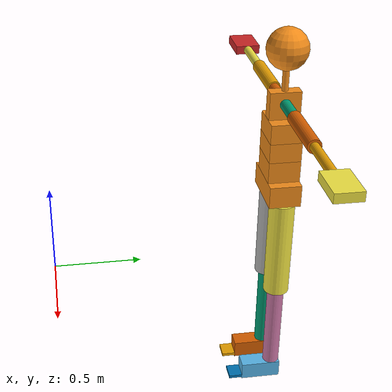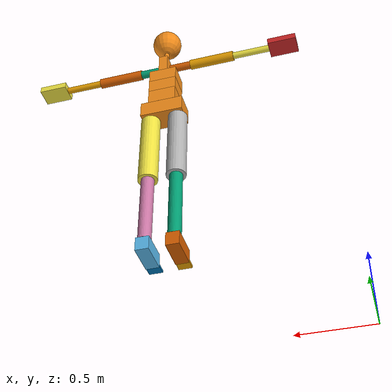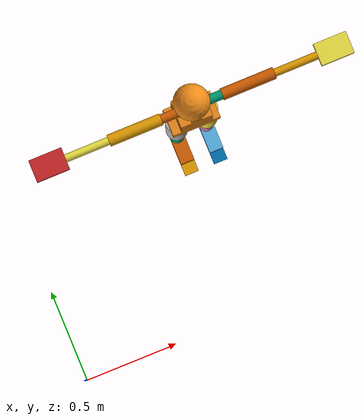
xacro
<!--URDF MODEL 66 DoFs-->

<robot name="human" xmlns:xacro="http://www.ros.org/wiki/xacro">

  <!-- Import all Gazebo-customization elements, including Gazebo colors -->
  <xacro:include filename="$(find wearable_robot_description)/urdf/human_66dof.gazebo"/>
  <!-- Import Rviz colors -->
  <xacro:include filename="$(find wearable_robot_description)/urdf/materials.xacro"/>

  <!--To open this model with Gazebo replace the null masses, inertias and dimensions of the 'fake links f1 and f2'-->
  <!--LINKS-->
  <!--Link base (1)-->
  <link name="Pelvis">
    <inertial>
      <mass value="4.976"/>
      <!--COM origin wrt pHipOrigin-->
      <origin xyz="0           0    0.049743" rpy="0 0 0" />
      <inertia ixx="0.029678" iyy="0.011854" izz="0.033653" ixy="0" ixz="0" iyz="0"/>
    </inertial>

    <visual>
      <!--box origin wrt pHipOrigin-->
      <origin xyz="0           0    0.049743" rpy="0 0 0" />
      <geometry>
        <box size="0.13815     0.24914    0.097469"/>
      </geometry>
      <material name="color"/>
    </visual>

    <collision>
      <!--box origin wrt pHipOrigin-->
      <origin xyz="0           0    0.049743" rpy="0 0 0" />
      <geometry>
        <box size="0.13815     0.24914    0.097469"/>
      </geometry>
    </collision>

  </link>
  <!--Chain from (2) to (7)-->
  <link name="L5_f1">
    <inertial>
      <mass value="0.1"/>
      <origin xyz="0 0 0" rpy="0 0 0" />
      <inertia ixx="1e-2" iyy="1e-2" izz="1e-2" ixy="0" ixz="0" iyz="0"/>
    </inertial>
  </link>
  <link name="L5_f2">
    <inertial>
      <mass value="0.1"/>
      <origin xyz="0 0 0" rpy="0 0 0" />
      <inertia ixx="1e-2" iyy="1e-2" izz="1e-2" ixy="0" ixz="0" iyz="0"/>
    </inertial>
  </link>
  <link name="L5">
    <inertial>
      <mass value="6.3444"/>
      <!--COM origin wrt jL5S1-->
      <origin xyz="0           0    0.047552" rpy="0 0 0" />
      <inertia ixx="0.018868" iyy="0.014872" izz="0.024177" ixy="0" ixz="0" iyz="0"/>
    </inertial>

    <visual>
      <!--box origin origin wrt jL5S1-->
      <origin xyz="0           0    0.047552" rpy="0 0 0" />
      <geometry>
        <box size="0.13815     0.16323    0.095104"/>
      </geometry>
      <material name="color"/>
    </visual>

    <collision>
      <!--box origin origin wrt jL5S1-->
      <origin xyz="0           0    0.047552" rpy="0 0 0" />
      <geometry>
        <box size="0.13815     0.16323    0.095104"/>
      </geometry>
    </collision>
  </link>
  <link name="L3_f1">
    <inertial>
      <mass value="0.1"/>
      <origin xyz="0 0 0" rpy="0 0 0" />
      <inertia ixx="1e-2" iyy="1e-2" izz="1e-2" ixy="0" ixz="0" iyz="0"/>
    </inertial>
  </link>
  <link name="L3_f2">
    <inertial>
      <mass value="0.1"/>
      <origin xyz="0 0 0" rpy="0 0 0" />
      <inertia ixx="1e-2" iyy="1e-2" izz="1e-2" ixy="0" ixz="0" iyz="0"/>
    </inertial>
  </link>
  <link name="L3">
    <inertial>
      <mass value="6.3444"/>
      <!--COM origin wrt jL4L3-->
      <origin xyz="0           0    0.042958" rpy="0 0 0" />
      <inertia ixx="0.017989" iyy="0.013993" izz="0.024177" ixy="0" ixz="0" iyz="0"/>
    </inertial>

    <visual>
      <!--box origin origin wrt jL4L3-->
      <origin xyz="0           0    0.042958" rpy="0 0 0" />
      <geometry>
        <box size="0.13815     0.16323    0.085916"/>
      </geometry>
      <material name="color"/>
    </visual>

    <collision>
      <!--box origin origin wrt jL4L3-->
      <origin xyz="0           0    0.042958" rpy="0 0 0" />
      <geometry>
        <box size="0.13815     0.16323    0.085916"/>
      </geometry>
    </collision>
  </link>
  <link name="T12_f1">
    <inertial>
      <mass value="0.1"/>
      <origin xyz="0 0 0" rpy="0 0 0" />
      <inertia ixx="1e-2" iyy="1e-2" izz="1e-2" ixy="0" ixz="0" iyz="0"/>
    </inertial>
  </link>
  <link name="T12_f2">
    <inertial>
      <mass value="0.1"/>
      <origin xyz="0 0 0" rpy="0 0 0" />
      <inertia ixx="1e-2" iyy="1e-2" izz="1e-2" ixy="0" ixz="0" iyz="0"/>
    </inertial>
  </link>
  <link name="T12">
    <inertial>
      <mass value="6.3444"/>
      <!--COM origin wrt jL1T12-->
      <origin xyz="0           0    0.042958" rpy="0 0 0" />
      <inertia ixx="0.017989" iyy="0.013993" izz="0.024177" ixy="0" ixz="0" iyz="0"/>
    </inertial>

    <visual>
      <!--box origin origin wrt jL1T12-->
      <origin xyz="0           0    0.042958" rpy="0 0 0" />
      <geometry>
        <box size="0.13815     0.16323    0.085916"/>
      </geometry>
      <material name="color"/>
    </visual>

    <collision>
      <!--box origin origin wrt jL1T12-->
      <origin xyz="0           0    0.042958" rpy="0 0 0" />
      <geometry>
        <box size="0.13815     0.16323    0.085916"/>
      </geometry>
    </collision>
  </link>
  <link name="T8_f1">
    <inertial>
      <mass value="0.1"/>
      <origin xyz="0 0 0" rpy="0 0 0" />
      <inertia ixx="1e-2" iyy="1e-2" izz="1e-2" ixy="0" ixz="0" iyz="0"/>
    </inertial>
  </link>
  <link name="T8_f2">
    <inertial>
      <mass value="0.1"/>
      <origin xyz="0 0 0" rpy="0 0 0" />
      <inertia ixx="1e-2" iyy="1e-2" izz="1e-2" ixy="0" ixz="0" iyz="0"/>
    </inertial>
  </link>
  <link name="T8">
    <inertial>
      <mass value="2.488"/>
      <!--COM origin wrt jT9T8-->
      <origin xyz="0           0    0.059874" rpy="0 0 0" />
      <inertia ixx="0.0035473" iyy="0.0067278" izz="0.0043289" ixy="0" ixz="0" iyz="0"/>
    </inertial>

    <visual>
      <!--box origin wrt jT9T8-->
      <origin xyz="0           0    0.059874" rpy="0 0 0" />
      <geometry>
        <box size="0.13457    0.052626     0.11975"/>
      </geometry>
      <material name="color"/>
    </visual>

    <collision>
      <!--box origin wrt jT9T8-->
      <origin xyz="0           0    0.059874" rpy="0 0 0" />
      <geometry>
        <box size="0.13457    0.052626     0.11975"/>
      </geometry>
    </collision>

  </link>
  <link name="Neck_f1">
    <inertial>
      <mass value="0.1"/>
      <origin xyz="0 0 0" rpy="0 0 0" />
      <inertia ixx="1e-2" iyy="1e-2" izz="1e-2" ixy="0" ixz="0" iyz="0"/>
    </inertial>
  </link>
  <link name="Neck_f2">
    <inertial>
      <mass value="0.1"/>
      <origin xyz="0 0 0" rpy="0 0 0" />
      <inertia ixx="1e-2" iyy="1e-2" izz="1e-2" ixy="0" ixz="0" iyz="0"/>
    </inertial>
  </link>
  <link name="Neck">
    <inertial>
      <mass value="0.7464"/>
      <!--COM origin wrt jT1C7-->
      <origin xyz="0           0    0.044626" rpy="0 0 0" />
      <inertia ixx="0.0006461" iyy="0.0006461" izz="0.00030124" ixy="0" ixz="0" iyz="0"/>
    </inertial>

    <visual>
      <!--box origin wrt jT1C7-->
      <origin xyz="0           0    0.044626" rpy="0 0 0" />
      <geometry>
	<cylinder length="0.089252" radius="0.014205"/>
      </geometry>
      <material name="color"/>
    </visual>

    <collision>
      <!--box origin wrt jT1C7-->
      <origin xyz="0           0    0.044626" rpy="0 0 0" />
      <geometry>
        <cylinder length="0.089252" radius="0.014205"/>
      </geometry>
    </collision>
  </link>
  <link name="Head_f1">
    <inertial>
      <mass value="0.1"/>
      <origin xyz="0 0 0" rpy="0 0 0" />
      <inertia ixx="1e-2" iyy="1e-2" izz="1e-2" ixy="0" ixz="0" iyz="0"/>
    </inertial>
  </link>
  <link name="Head_f2">
    <inertial>
      <mass value="0.1"/>
      <origin xyz="0 0 0" rpy="0 0 0" />
      <inertia ixx="1e-2" iyy="1e-2" izz="1e-2" ixy="0" ixz="0" iyz="0"/>
    </inertial>
  </link>
  <link name="Head">
    <inertial>
      <mass value="2.2392"/>
      <!--COM origin wrt jC1Head-->
      <origin xyz="0           0    0.089005" rpy="0 0 0" />
      <inertia ixx="0.0070955" iyy="0.0070955" izz="0.0070955" ixy="0" ixz="0" iyz="0"/>
    </inertial>

    <visual>
      <!--boc origin wrt jC1Head-->
      <origin xyz="0           0    0.089005" rpy="0 0 0" />
      <geometry>
        <sphere radius="0.089005"/>
      </geometry>
      <material name="color"/>
    </visual>

    <collision>
      <!--box origin wrt jC1Head-->
      <origin xyz="0           0    0.089005" rpy="0 0 0" />
      <geometry>
        <sphere radius="0.089005"/>
      </geometry>
    </collision>

  </link>
  <!--Chain from (8) to (11)-->
  <link name="RightShoulder_f1">
    <inertial>
      <mass value="0.1"/>
      <origin xyz="0 0 0" rpy="0 0 0" />
      <inertia ixx="1e-2" iyy="1e-2" izz="1e-2" ixy="0" ixz="0" iyz="0"/>
    </inertial>
  </link>
  <link name="RightShoulder_f2">
    <inertial>
      <mass value="0.1"/>
      <origin xyz="0 0 0" rpy="0 0 0" />
      <inertia ixx="1e-2" iyy="1e-2" izz="1e-2" ixy="0" ixz="0" iyz="0"/>
    </inertial>
  </link>
  <link name="RightShoulder">
    <inertial>
      <mass value="1.9282"/>
      <!--COM origin wrt jRightC7Shoulder-->
      <origin xyz="0   -0.065233           0" rpy="0 0 0" />
      <inertia ixx="0.0030029" iyy="0.00053578" izz="0.0030029" ixy="0" ixz="0" iyz="0"/>
    </inertial>

    <visual>
      <!--box origin wrt jRightC7Shoulder. RPY rotated of pi/2.-->
      <origin xyz="0   -0.065233           0" rpy="1.5708 0 0" />
      <geometry>
        <cylinder length="0.13047" radius="0.023574"/>
      </geometry>
      <material name="color"/>
    </visual>

    <collision>
      <!--box origin wrt jRightC7Shoulder. RPY rotated of pi/2.-->
      <origin xyz="0   -0.065233           0" rpy="1.5708 0 0" />
      <geometry>
        <cylinder length="0.13047" radius="0.023574"/>
      </geometry>
    </collision>

  </link>
  <link name="RightUpperArm_f1">
    <inertial>
      <mass value="0.1"/>
      <origin xyz="0 0 0" rpy="0 0 0" />
      <inertia ixx="1e-2" iyy="1e-2" izz="1e-2" ixy="0" ixz="0" iyz="0"/>
    </inertial>
  </link>
  <link name="RightUpperArm_f2">
    <inertial>
      <mass value="0.1"/>
      <origin xyz="0 0 0" rpy="0 0 0" />
      <inertia ixx="1e-2" iyy="1e-2" izz="1e-2" ixy="0" ixz="0" iyz="0"/>
    </inertial>
  </link>
  <link name="RightUpperArm">
    <inertial>
      <mass value="1.866"/>
      <!--COM origin wrt jRightShoulder-->
      <origin xyz="0    -0.13497           0" rpy="0 0 0" />
      <inertia ixx="0.011736" iyy="0.00080917" izz="0.011736" ixy="0" ixz="0" iyz="0"/>
    </inertial>

    <visual>
      <!--box origin wrt jRightShoulder. RPY rotated of pi/2.-->
      <origin xyz="0    -0.13497           0" rpy="1.5708 0 0" />
      <geometry>
        <cylinder length="0.26994" radius="0.029449"/>
      </geometry>
      <material name="color"/>
    </visual>

    <collision>
      <!--box origin wrt jRightShoulder. RPY rotated of pi/2.-->
      <origin xyz="0    -0.13497           0" rpy="1.5708 0 0" />
      <geometry>
        <cylinder length="0.26994" radius="0.029449"/>
      </geometry>
    </collision>

  </link>
  <link name="RightForeArm_f1">
    <inertial>
      <mass value="0.1"/>
      <origin xyz="0 0 0" rpy="0 0 0" />
      <inertia ixx="1e-2" iyy="1e-2" izz="1e-2" ixy="0" ixz="0" iyz="0"/>
    </inertial>
  </link>
  <link name="RightForeArm_f2">
    <inertial>
      <mass value="0.1"/>
      <origin xyz="0 0 0" rpy="0 0 0" />
      <inertia ixx="1e-2" iyy="1e-2" izz="1e-2" ixy="0" ixz="0" iyz="0"/>
    </inertial>
  </link>
  <link name="RightForeArm">
    <inertial>
      <mass value="1.244"/>
      <!--COM origin wrt jRightElbow-->
      <origin xyz="0    -0.11124           0" rpy="0 0 0" />
      <inertia ixx="0.0052508" iyy="0.00023975" izz="0.0052508" ixy="0" ixz="0" iyz="0"/>
    </inertial>

    <visual>
      <!--box origin wrt jRightElbow. RPY rotated of pi/2.-->
      <origin xyz="0    -0.11124           0" rpy="1.5708 0 0" />
      <geometry>
        <cylinder length="0.22247" radius="0.019633"/>
      </geometry>
      <material name="color"/>
    </visual>

    <collision>
      <!--box origin wrt jRightElbow. RPY rotated of pi/2.-->
      <origin xyz="0    -0.11124           0" rpy="1.5708 0 0" />
      <geometry>
        <cylinder length="0.22247" radius="0.019633"/>
      </geometry>
    </collision>

  </link>
  <link name="RightHand_f1">
    <inertial>
      <mass value="0.1"/>
      <origin xyz="0 0 0" rpy="0 0 0" />
      <inertia ixx="1e-2" iyy="1e-2" izz="1e-2" ixy="0" ixz="0" iyz="0"/>
    </inertial>
  </link>
  <link name="RightHand_f2">
    <inertial>
      <mass value="0.1"/>
      <origin xyz="0 0 0" rpy="0 0 0" />
      <inertia ixx="1e-2" iyy="1e-2" izz="1e-2" ixy="0" ixz="0" iyz="0"/>
    </inertial>
  </link>
  <link name="RightHand">
    <inertial>
      <mass value="0.3732"/>
      <!--COM origin wrt jRightWrist-->
      <origin xyz="0   -0.083588           0" rpy="0 0 0" />
      <inertia ixx="0.00091713" iyy="0.00043425" izz="0.0012555" ixy="0" ixz="0" iyz="0"/>
    </inertial>

    <visual>
      <!--box origin wrt jRightWrist-->
      <origin xyz="0   -0.083588           0" rpy="0 0 0" />
      <geometry>
        <box size="0.11145     0.16718    0.039266"/>
      </geometry>
      <material name="color"/>
    </visual>

    <collision>
      <!--box origin wrt jRightWrist-->
      <origin xyz="0   -0.083588           0" rpy="0 0 0" />
      <geometry>
        <box size="0.11145     0.16718    0.039266"/>
      </geometry>
      <contact_coefficients mu="0" kp="1000.0" kd="1.0"/>
    </collision>
  </link>
  <link name="RightHandCOM">
    <inertial>
      <mass value="0.00001"/>
      <origin xyz="0 0 0" rpy="0 0 0" />
      <inertia ixx="0" iyy="0" izz="0" ixy="0" ixz="0" iyz="0"/>
    </inertial>
    <visual>
      <!--box origin wrt jRightWrist-->
      <origin xyz="0   0           0" rpy="0 0 0" />
      <geometry>
        <box size="0     0    0"/>
      </geometry>
      <material name="color"/>
    </visual>
  </link>
  <!--Chain from (12) to (15)-->
  <link name="LeftShoulder_f1">
    <inertial>
      <mass value="0.1"/>
      <origin xyz="0 0 0" rpy="0 0 0" />
      <inertia ixx="1e-2" iyy="1e-2" izz="1e-2" ixy="0" ixz="0" iyz="0"/>
    </inertial>
  </link>
  <link name="LeftShoulder_f2">
    <inertial>
      <mass value="0.1"/>
      <origin xyz="0 0 0" rpy="0 0 0" />
      <inertia ixx="1e-2" iyy="1e-2" izz="1e-2" ixy="0" ixz="0" iyz="0"/>
    </inertial>
  </link>
  <link name="LeftShoulder">
    <inertial>
      <mass value="1.9282"/>
      <!--COM origin wrt jLeftC7Shoulder-->
      <origin xyz="0    0.065233           0" rpy="0 0 0" />
      <inertia ixx="0.0030029" iyy="0.00053578" izz="0.0030029" ixy="0" ixz="0" iyz="0"/>
    </inertial>

    <visual>
      <!--box origin wrt jLeftC7Shoulder. RPY rotated of pi/2.-->
      <origin xyz="0    0.065233           0" rpy="1.5708 0 0" />
      <geometry>
        <cylinder length="0.13047" radius="0.023574"/>
      </geometry>
      <material name="color"/>
    </visual>

    <collision>
      <!--box origin wrt jLeftC7Shoulder. RPY rotated of pi/2.-->
      <origin xyz="0    0.065233           0" rpy="1.5708 0 0" />
      <geometry>
        <cylinder length="0.13047" radius="0.023574"/>
      </geometry>
    </collision>

  </link>
  <link name="LeftUpperArm_f1">
    <inertial>
      <mass value="0.1"/>
      <origin xyz="0 0 0" rpy="0 0 0" />
      <inertia ixx="1e-2" iyy="1e-2" izz="1e-2" ixy="0" ixz="0" iyz="0"/>
    </inertial>
  </link>
  <link name="LeftUpperArm_f2">
    <inertial>
      <mass value="0.1"/>
      <origin xyz="0 0 0" rpy="0 0 0" />
      <inertia ixx="1e-2" iyy="1e-2" izz="1e-2" ixy="0" ixz="0" iyz="0"/>
    </inertial>
  </link>
  <link name="LeftUpperArm">
    <inertial>
      <mass value="1.866"/>
      <!--COM origin wrt jLeftShoulder-->
      <origin xyz="0     0.13497           0" rpy="0 0 0" />
      <inertia ixx="0.011736" iyy="0.00080917" izz="0.011736" ixy="0" ixz="0" iyz="0"/>
    </inertial>

    <visual>
      <!--box origin wrt jLeftShoulder. RPY rotated of pi/2.-->
      <origin xyz="0     0.13497           0" rpy="1.5708 0 0" />
      <geometry>
        <cylinder length="0.26994" radius="0.029449"/>
      </geometry>
      <material name="color"/>
    </visual>

    <collision>
      <!--box origin wrt jLeftShoulder. RPY rotated of pi/2.-->
      <origin xyz="0     0.13497           0" rpy="1.5708 0 0" />
      <geometry>
        <cylinder length="0.26994" radius="0.029449"/>
      </geometry>
    </collision>

  </link>
  <link name="LeftForeArm_f1">
    <inertial>
      <mass value="0.1"/>
      <origin xyz="0 0 0" rpy="0 0 0" />
      <inertia ixx="1e-2" iyy="1e-2" izz="1e-2" ixy="0" ixz="0" iyz="0"/>
    </inertial>
  </link>
  <link name="LeftForeArm_f2">
    <inertial>
      <mass value="0.1"/>
      <origin xyz="0 0 0" rpy="0 0 0" />
      <inertia ixx="1e-2" iyy="1e-2" izz="1e-2" ixy="0" ixz="0" iyz="0"/>
    </inertial>
  </link>
  <link name="LeftForeArm">
    <inertial>
      <mass value="1.244"/>
      <!--COM origin wrt jLeftElbow-->
      <origin xyz="0     0.11124           0" rpy="0 0 0" />
      <inertia ixx="0.0052508" iyy="0.00023975" izz="0.0052508" ixy="0" ixz="0" iyz="0"/>
    </inertial>

    <visual>
      <!--box origin wrt jLeftElbow. RPY rotated of pi/2.-->
      <origin xyz="0     0.11124           0" rpy="1.5708 0 0" />
      <geometry>
        <cylinder length="0.22247" radius="0.019633"/>
      </geometry>
      <material name="color"/>
    </visual>

    <collision>
      <!--box origin wrt jLeftElbow. RPY rotated of pi/2.-->
      <origin xyz="0     0.11124           0" rpy="1.5708 0 0" />
      <geometry>
        <cylinder length="0.22247" radius="0.019633"/>
      </geometry>
    </collision>

  </link>
  <link name="LeftHand_f1">
    <inertial>
      <mass value="0.1"/>
      <origin xyz="0 0 0" rpy="0 0 0" />
      <inertia ixx="1e-2" iyy="1e-2" izz="1e-2" ixy="0" ixz="0" iyz="0"/>
    </inertial>
  </link>
  <link name="LeftHand_f2">
    <inertial>
      <mass value="0.1"/>
      <origin xyz="0 0 0" rpy="0 0 0" />
      <inertia ixx="1e-2" iyy="1e-2" izz="1e-2" ixy="0" ixz="0" iyz="0"/>
    </inertial>
  </link>
  <link name="LeftHand">
    <inertial>
      <mass value="0.3732"/>
      <!--COM origin wrt jLeftWrist-->
      <origin xyz="0    0.083588           0" rpy="0 0 0" />
      <inertia ixx="0.00091713" iyy="0.00043425" izz="0.0012555" ixy="0" ixz="0" iyz="0"/>
    </inertial>

    <visual>
      <!--COM origin wrt jLeftWrist-->
      <origin xyz="0    0.083588           0" rpy="0 0 0" />
      <geometry>
        <box size="0.11145     0.16718    0.039266"/>
      </geometry>
      <material name="color"/>
    </visual>

    <collision>
      <!--COM origin wrt jLeftWrist-->
      <origin xyz="0    0.083588           0" rpy="0 0 0" />
      <geometry>
        <box size="0.11145     0.16718    0.039266"/>
      </geometry>
    </collision>

  </link>
  <link name="LeftHandCOM">
    <inertial>
      <mass value="0.00001"/>
      <origin xyz="0 0 0" rpy="0 0 0" />
      <inertia ixx="0" iyy="0" izz="0" ixy="0" ixz="0" iyz="0"/>
    </inertial>
    <visual>
      <!--COM origin wrt jLeftWrist-->
      <origin xyz="0    0           0" rpy="0 0 0" />
      <geometry>
        <box size="0     0    0"/>
      </geometry>
      <material name="color"/>
    </visual>
  </link>
  <!--Chain from (16) to (19)-->
  <link name="RightUpperLeg_f1">
    <inertial>
      <mass value="0.1"/>
      <origin xyz="0 0 0" rpy="0 0 0" />
      <inertia ixx="1e-2" iyy="1e-2" izz="1e-2" ixy="0" ixz="0" iyz="0"/>
    </inertial>
  </link>
  <link name="RightUpperLeg_f2">
    <inertial>
      <mass value="0.1"/>
      <origin xyz="0 0 0" rpy="0 0 0" />
      <inertia ixx="1e-2" iyy="1e-2" izz="1e-2" ixy="0" ixz="0" iyz="0"/>
    </inertial>
  </link>
  <link name="RightUpperLeg">
    <inertial>
      <mass value="7.775"/>
      <!--COM origin wrt jRightHip-->
      <origin xyz="0           0    -0.22449" rpy="0 0 0" />
      <inertia ixx="0.13681" iyy="0.13681" izz="0.01241" ixy="0" ixz="0" iyz="0"/>
    </inertial>

    <visual>
      <!--box origin wrt jRightHip-->
      <origin xyz="0           0    -0.22449" rpy="0 0 0" />
      <geometry>
        <cylinder length="0.44898" radius="0.0565"/>
      </geometry>
      <material name="color"/>
    </visual>

    <collision>
      <!--box origin wrt jRightHip-->
      <origin xyz="0           0    -0.22449" rpy="0 0 0" />
      <geometry>
        <cylinder length="0.44898" radius="0.0565"/>
      </geometry>
    </collision>

  </link>
  <link name="RightLowerLeg_f1">
    <inertial>
      <mass value="0.1"/>
      <origin xyz="0 0 0" rpy="0 0 0" />
      <inertia ixx="1e-2" iyy="1e-2" izz="1e-2" ixy="0" ixz="0" iyz="0"/>
    </inertial>
  </link>
  <link name="RightLowerLeg_f2">
    <inertial>
      <mass value="0.1"/>
      <origin xyz="0 0 0" rpy="0 0 0" />
      <inertia ixx="1e-2" iyy="1e-2" izz="1e-2" ixy="0" ixz="0" iyz="0"/>
    </inertial>
  </link>
  <link name="RightLowerLeg">
    <inertial>
      <mass value="2.2703"/>
      <!--COM origin wrt jRightKnee-->
      <origin xyz="0           0    -0.20304" rpy="0 0 0" />
      <inertia ixx="0.031992" iyy="0.031992" izz="0.0015867" ixy="0" ixz="0" iyz="0"/>
    </inertial>

    <visual>
      <!--box origin wrt jRightKnee-->
      <origin xyz="0           0    -0.20304" rpy="0 0 0" />
      <geometry>
        <cylinder length="0.40608" radius="0.037388"/>
      </geometry>
      <material name="color"/>
    </visual>

    <collision>
      <!--box origin wrt jRightKnee-->
      <origin xyz="0           0    -0.20304" rpy="0 0 0" />
      <geometry>
        <cylinder length="0.40608" radius="0.037388"/>
      </geometry>
    </collision>

  </link>
  <link name="RightFoot_f1">
    <inertial>
      <mass value="0.1"/>
      <origin xyz="0 0 0" rpy="0 0 0" />
      <inertia ixx="1e-2" iyy="1e-2" izz="1e-2" ixy="0" ixz="0" iyz="0"/>
    </inertial>
  </link>
  <link name="RightFoot_f2">
    <inertial>
      <mass value="0.1"/>
      <origin xyz="0 0 0" rpy="0 0 0" />
      <inertia ixx="1e-2" iyy="1e-2" izz="1e-2" ixy="0" ixz="0" iyz="0"/>
    </inertial>
  </link>
  <link name="RightFoot">
    <inertial>
      <mass value="0.8086"/>
      <!--COM origin wrt jRightAnkle-->
      <origin xyz="0.054652           0   -0.039254" rpy="0 0 0" />
      <inertia ixx="0.00079209" iyy="0.0025944" izz="0.0025558" ixy="0" ixz="0" iyz="0"/>
    </inertial>

    <visual>
      <!--box origin wrt jRightAnkle-->
      <origin xyz="0.054652           0   -0.039254" rpy="0 0 0" />
      <geometry>
        <box size="0.17983    0.074775    0.078509"/>
      </geometry>
      <material name="color"/>
    </visual>

    <collision>
      <!--box origin wrt jRightAnkle-->
      <origin xyz="0.054652           0   -0.039254" rpy="0 0 0" />
      <geometry>
        <box size="0.17983    0.074775    0.078509"/>
      </geometry>
    </collision>

  </link>
  <link name="RightToe_f1">
    <inertial>
      <mass value="0.1"/>
      <origin xyz="0 0 0" rpy="0 0 0" />
      <inertia ixx="1e-2" iyy="1e-2" izz="1e-2" ixy="0" ixz="0" iyz="0"/>
    </inertial>
  </link>
  <link name="RightToe_f2">
    <inertial>
      <mass value="0.1"/>
      <origin xyz="0 0 0" rpy="0 0 0" />
      <inertia ixx="1e-2" iyy="1e-2" izz="1e-2" ixy="0" ixz="0" iyz="0"/>
    </inertial>
  </link>
  <link name="RightToe">
    <inertial>
      <mass value="0.0933"/>
      <!--COM origin wrt jRightBallFoot-->
      <origin xyz="0.030086           0           0" rpy="0 0 0" />
      <inertia ixx="4.5038e-05" iyy="2.9717e-05" izz="7.1624e-05" ixy="0" ixz="0" iyz="0"/>
    </inertial>

    <visual>
      <!--box origin wrt jRightBallFoot-->
      <origin xyz="0.030086           0           0" rpy="0 0 0" />
      <geometry>
        <box size="0.060173    0.074775    0.014191"/>
      </geometry>
      <material name="color"/>
    </visual>

    <collision>
      <!--box origin wrt jRightBallFoot-->
      <origin xyz="0.030086           0           0" rpy="0 0 0" />
      <geometry>
        <box size="0.060173    0.074775    0.014191"/>
      </geometry>
    </collision>
  </link>
  <!--Chain from (20) to (23)-->
  <link name="LeftUpperLeg_f1">
    <inertial>
      <mass value="0.1"/>
      <origin xyz="0 0 0" rpy="0 0 0" />
      <inertia ixx="1e-2" iyy="1e-2" izz="1e-2" ixy="0" ixz="0" iyz="0"/>
    </inertial>
  </link>
  <link name="LeftUpperLeg_f2">
    <inertial>
      <mass value="0.1"/>
      <origin xyz="0 0 0" rpy="0 0 0" />
      <inertia ixx="1e-2" iyy="1e-2" izz="1e-2" ixy="0" ixz="0" iyz="0"/>
    </inertial>
  </link>
  <link name="LeftUpperLeg">
    <inertial>
      <mass value="7.775"/>
      <!--COM origin wrt jLeftHip-->
      <origin xyz="0           0    -0.22449" rpy="0 0 0" />
      <inertia ixx="0.13681" iyy="0.13681" izz="0.01241" ixy="0" ixz="0" iyz="0"/>
    </inertial>

    <visual>
      <!--box origin wrt jLeftHip-->
      <origin xyz="0           0    -0.22449" rpy="0 0 0" />
      <geometry>
        <cylinder length="0.44898" radius="0.0565"/>
      </geometry>
      <material name="color"/>
    </visual>

    <collision>
      <!--box origin wrt jLeftHip-->
      <origin xyz="0           0    -0.22449" rpy="0 0 0" />
      <geometry>
        <cylinder length="0.44898" radius="0.0565"/>
      </geometry>
    </collision>

  </link>
  <link name="LeftLowerLeg_f1">
    <inertial>
      <mass value="0.1"/>
      <origin xyz="0 0 0" rpy="0 0 0" />
      <inertia ixx="1e-2" iyy="1e-2" izz="1e-2" ixy="0" ixz="0" iyz="0"/>
    </inertial>
  </link>
  <link name="LeftLowerLeg_f2">
    <inertial>
      <mass value="0.1"/>
      <origin xyz="0 0 0" rpy="0 0 0" />
      <inertia ixx="1e-2" iyy="1e-2" izz="1e-2" ixy="0" ixz="0" iyz="0"/>
    </inertial>
  </link>
  <link name="LeftLowerLeg">
    <inertial>
      <mass value="2.2703"/>
      <!--COM origin wrt jLeftKnee-->
      <origin xyz="0           0    -0.20304" rpy="0 0 0" />
      <inertia ixx="0.031992" iyy="0.031992" izz="0.0015867" ixy="0" ixz="0" iyz="0"/>
    </inertial>

    <visual>
      <!--box origin wrt jLeftKnee-->
      <origin xyz="0           0    -0.20304" rpy="0 0 0" />
      <geometry>
        <cylinder length="0.40608" radius="0.037388"/>
      </geometry>
      <material name="color"/>
    </visual>

    <collision>
      <!--box origin wrt jLeftKnee-->
      <origin xyz="0           0    -0.20304" rpy="0 0 0" />
      <geometry>
        <cylinder length="0.40608" radius="0.037388"/>
      </geometry>
    </collision>

  </link>
  <link name="LeftFoot_f1">
    <inertial>
      <mass value="0.1"/>
      <origin xyz="0 0 0" rpy="0 0 0" />
      <inertia ixx="1e-2" iyy="1e-2" izz="1e-2" ixy="0" ixz="0" iyz="0"/>
    </inertial>
  </link>
  <link name="LeftFoot_f2">
    <inertial>
      <mass value="0.1"/>
      <origin xyz="0 0 0" rpy="0 0 0" />
      <inertia ixx="1e-2" iyy="1e-2" izz="1e-2" ixy="0" ixz="0" iyz="0"/>
    </inertial>
  </link>
  <link name="LeftFoot">
    <inertial>
      <mass value="0.8086"/>
      <!--COM origin wrt jLeftAnkle-->
      <origin xyz="0.054652           0   -0.039254" rpy="0 0 0" />
      <inertia ixx="0.00079209" iyy="0.0025944" izz="0.0025558" ixy="0" ixz="0" iyz="0"/>
    </inertial>

    <visual>
      <!--box origin wrt jLeftAnkle-->
      <origin xyz="0.054652           0   -0.039254" rpy="0 0 0" />
      <geometry>
        <box size="0.17983    0.074775    0.078509"/>
      </geometry>
      <material name="color"/>
    </visual>

    <collision>
      <!--box origin wrt jLeftAnkle-->
      <origin xyz="0.054652           0   -0.039254" rpy="0 0 0" />
      <geometry>
        <box size="0.17983    0.074775    0.078509"/>
      </geometry>
    </collision>

  </link>
  <link name="LeftToe_f1">
    <inertial>
      <mass value="0.1"/>
      <origin xyz="0 0 0" rpy="0 0 0" />
      <inertia ixx="1e-2" iyy="1e-2" izz="1e-2" ixy="0" ixz="0" iyz="0"/>
    </inertial>
  </link>
  <link name="LeftToe_f2">
    <inertial>
      <mass value="0.1"/>
      <origin xyz="0 0 0" rpy="0 0 0" />
      <inertia ixx="1e-2" iyy="1e-2" izz="1e-2" ixy="0" ixz="0" iyz="0"/>
    </inertial>
  </link>
  <link name="LeftToe">
    <inertial>
      <mass value="0.0933"/>
      <!--COM origin wrt jLeftBallFoot-->
      <origin xyz="0.030086           0           0" rpy="0 0 0" />
      <inertia ixx="4.5038e-05" iyy="2.9717e-05" izz="7.1624e-05" ixy="0" ixz="0" iyz="0"/>
    </inertial>

    <visual>
      <!--box origin wrt jLeftBallFoot-->
      <origin xyz="0.030086           0           0" rpy="0 0 0" />
      <geometry>
        <box size="0.060173    0.074775    0.014191"/>
      </geometry>
      <material name="color"/>
    </visual>

    <collision>
      <!--box origin wrt jLeftBallFoot-->
      <origin xyz="0.030086           0           0" rpy="0 0 0" />
      <geometry>
        <box size="0.060173    0.074775    0.014191"/>
      </geometry>
    </collision>
  </link>

  <!--JOINTS-->
  <!--Chain from (2) to (7)-->
  <joint name="jL5S1_rotx" type="fixed">
    <origin xyz="-0.000206           0    0.098478" rpy="0 0 0"/>
    <parent link="Pelvis"/>
    <child link="L5_f1"/>
    <dynamics damping="0.1" friction="0.0"/>
    <limit effort="30" velocity="1.0" lower="-10.0" upper="10.0" />
    <axis xyz="1 0 0" />
  </joint>
  <joint name="jL5S1_roty" type="fixed">
    <origin xyz="0 0 0" rpy="0 0 0"/>
    <parent link="L5_f1"/>
    <child link="L5_f2"/>
    <dynamics damping="0.1" friction="0.0"/>
    <limit effort="30" velocity="1.0" lower="-10.0" upper="10.0" />
    <axis xyz="0 1 0" />
  </joint>
  <joint name="jL5S1_rotz" type="fixed">
    <origin xyz="0 0 0" rpy="0 0 0"/>
    <parent link="L5_f2"/>
    <child link="L5"/>
    <dynamics damping="0.1" friction="0.0"/>
    <limit effort="30" velocity="1.0" lower="-10.0" upper="10.0" />
    <axis xyz="0 0 1" />
  </joint>
  <joint name="jL4L3_rotx" type="fixed">
    <origin xyz="0.000374           0    0.095104" rpy="0 0 0"/>
    <parent link="L5"/>
    <child link="L3_f1"/>
    <dynamics damping="0.1" friction="0.0"/>
    <limit effort="30" velocity="1.0" lower="-10.0" upper="10.0" />
    <axis xyz="1 0 0" />
  </joint>
  <joint name="jL4L3_roty" type="fixed">
    <origin xyz="0 0 0" rpy="0 0 0"/>
    <parent link="L3_f1"/>
    <child link="L3_f2"/>
    <dynamics damping="0.1" friction="0.0"/>
    <limit effort="30" velocity="1.0" lower="-10.0" upper="10.0" />
    <axis xyz="0 1 0" />
  </joint>
  <joint name="jL4L3_rotz" type="fixed">
    <origin xyz="0 0 0" rpy="0 0 0"/>
    <parent link="L3_f2"/>
    <child link="L3"/>
    <dynamics damping="0.1" friction="0.0"/>
    <limit effort="30" velocity="1.0" lower="-10.0" upper="10.0" />
    <axis xyz="0 0 1" />
  </joint>
  <joint name="jL1T12_rotx" type="fixed">
    <origin xyz="0           0    0.085916" rpy="0 0 0"/>
    <parent link="L3"/>
    <child link="T12_f1"/>
    <dynamics damping="0.1" friction="0.0"/>
    <limit effort="30" velocity="1.0" lower="-10.0" upper="10.0" />
    <axis xyz="1 0 0" />
  </joint>
  <joint name="jL1T12_roty" type="fixed">
    <origin xyz="0 0 0" rpy="0 0 0"/>
    <parent link="T12_f1"/>
    <child link="T12_f2"/>
    <dynamics damping="0.1" friction="0.0"/>
    <limit effort="30" velocity="1.0" lower="-10.0" upper="10.0" />
    <axis xyz="0 1 0" />
  </joint>
  <joint name="jL1T12_rotz" type="fixed">
    <origin xyz="0 0 0" rpy="0 0 0"/>
    <parent link="T12_f2"/>
    <child link="T12"/>
    <dynamics damping="0.1" friction="0.0"/>
    <limit effort="30" velocity="1.0" lower="-10.0" upper="10.0" />
    <axis xyz="0 0 1" />
  </joint>
  <joint name="jT9T8_rotx" type="fixed">
    <origin xyz="0           0    0.085916" rpy="0 0 0"/>
    <parent link="T12"/>
    <child link="T8_f1"/>
    <dynamics damping="0.1" friction="0.0"/>
    <limit effort="30" velocity="1.0" lower="-10.0" upper="10.0" />
    <axis xyz="1 0 0" />
  </joint>
  <joint name="jT9T8_roty" type="fixed">
    <origin xyz="0 0 0" rpy="0 0 0"/>
    <parent link="T8_f1"/>
    <child link="T8_f2"/>
    <dynamics damping="0.1" friction="0.0"/>
    <limit effort="30" velocity="1.0" lower="-10.0" upper="10.0" />
    <axis xyz="0 1 0" />
  </joint>
  <joint name="jT9T8_rotz" type="fixed">
    <origin xyz="0 0 0" rpy="0 0 0"/>
    <parent link="T8_f2"/>
    <child link="T8"/>
    <dynamics damping="0.1" friction="0.0"/>
    <limit effort="30" velocity="1.0" lower="-10.0" upper="10.0" />
    <axis xyz="0 0 1" />
  </joint>
  <joint name="jT1C7_rotx" type="fixed">
    <origin xyz="0           0     0.11975" rpy="0 0 0"/>
    <parent link="T8"/>
    <child link="Neck_f1"/>
    <dynamics damping="0.1" friction="0.0"/>
    <limit effort="30" velocity="1.0" lower="-10.0" upper="10.0" />
    <axis xyz="1 0 0" />
  </joint>
  <joint name="jT1C7_roty" type="fixed">
    <origin xyz="0 0 0" rpy="0 0 0"/>
    <parent link="Neck_f1"/>
    <child link="Neck_f2"/>
    <dynamics damping="0.1" friction="0.0"/>
    <limit effort="30" velocity="1.0" lower="-10.0" upper="10.0" />
    <axis xyz="0 1 0" />
  </joint>
  <joint name="jT1C7_rotz" type="revolute">
    <origin xyz="0 0 0" rpy="0 0 0"/>
    <parent link="Neck_f2"/>
    <child link="Neck"/>
    <dynamics damping="0.1" friction="0.0"/>
    <limit effort="30" velocity="1.0" lower="-10.0" upper="10.0" />
    <axis xyz="0 0 1" />
  </joint>
  <joint name="jC1Head_rotx" type="fixed">
    <origin xyz="0.000152           0    0.089252" rpy="0 0 0"/>
    <parent link="Neck"/>
    <child link="Head_f1"/>
    <dynamics damping="0.1" friction="0.0"/>
    <limit effort="30" velocity="1.0" lower="-10.0" upper="10.0" />
    <axis xyz="1 0 0" />
  </joint>
  <joint name="jC1Head_roty" type="fixed">
    <origin xyz="0 0 0" rpy="0 0 0"/>
    <parent link="Head_f1"/>
    <child link="Head_f2"/>
    <dynamics damping="0.1" friction="0.0"/>
    <limit effort="30" velocity="1.0" lower="-10.0" upper="10.0" />
    <axis xyz="0 1 0" />
  </joint>
  <joint name="jC1Head_rotz" type="revolute">
    <origin xyz="0 0 0" rpy="0 0 0"/>
    <parent link="Head_f2"/>
    <child link="Head"/>
    <dynamics damping="0.1" friction="0.0"/>
    <limit effort="30" velocity="1.0" lower="-10.0" upper="10.0" />
    <axis xyz="0 0 1" />
  </joint>
  <!--Chain from (8) to (11)-->
  <!-- Shouler -->
  <joint name="jRightC7Shoulder_rotx" type="fixed">
    <origin xyz="0   -0.026313    0.067052" rpy="0 0 0"/>
    <parent link="T8"/>
    <child link="RightShoulder_f1"/>
    <dynamics damping="0.1" friction="0.0"/>
    <limit effort="30" velocity="1.0" lower="-10.0" upper="10.0" />
    <axis xyz="1 0 0" />
  </joint>
  <joint name="jRightC7Shoulder_roty" type="fixed">
    <origin xyz="0 0 0" rpy="0 0 0"/>
    <parent link="RightShoulder_f1"/>
    <child link="RightShoulder_f2"/>
    <dynamics damping="0.1" friction="0.0"/>
    <limit effort="30" velocity="1.0" lower="-10.0" upper="10.0" />
    <axis xyz="0 1 0" />
  </joint>
  <joint name="jRightC7Shoulder_rotz" type="fixed">
    <origin xyz="0 0 0" rpy="0 0 0"/>
    <parent link="RightShoulder_f2"/>
    <child link="RightShoulder"/>
    <dynamics damping="0.1" friction="0.0"/>
    <limit effort="30" velocity="1.0" lower="-10.0" upper="10.0" />
    <axis xyz="0 0 1" />
  </joint>
  <joint name="jRightShoulder_rotx" type="revolute">
    <origin xyz="0    -0.13047           0" rpy="0 0 0"/>
    <parent link="RightShoulder"/>
    <child link="RightUpperArm_f1"/>
    <dynamics damping="0.1" friction="0.0"/>
    <limit effort="30" velocity="1.0" lower="-10.0" upper="10.0" />
    <axis xyz="1 0 0" />
  </joint>
  <joint name="jRightShoulder_roty" type="fixed">
    <origin xyz="0 0 0" rpy="0 0 0"/>
    <parent link="RightUpperArm_f1"/>
    <child link="RightUpperArm_f2"/>
    <dynamics damping="0.1" friction="0.0"/>
    <limit effort="30" velocity="1.0" lower="-10.0" upper="10.0" />
    <axis xyz="0 1 0" />
  </joint>
  <joint name="jRightShoulder_rotz" type="revolute">
    <origin xyz="0 0 0" rpy="0 0 0"/>
    <parent link="RightUpperArm_f2"/>
    <child link="RightUpperArm"/>
    <dynamics damping="0.1" friction="0.0"/>
    <limit effort="30" velocity="1.0" lower="-10.0" upper="10.0" />
    <axis xyz="0 0 1" />
  </joint>
  <joint name="jRightElbow_rotx" type="revolute">
    <origin xyz="0    -0.26994           0" rpy="0 0 0"/>
    <parent link="RightUpperArm"/>
    <child link="RightForeArm_f1"/>
    <dynamics damping="0.1" friction="0.0"/>
    <limit effort="30" velocity="1.0" lower="-10.0" upper="10.0" />
    <axis xyz="1 0 0" />
  </joint>
  <joint name="jRightElbow_roty" type="fixed">
    <origin xyz="0 0 0" rpy="0 0 0"/>
    <parent link="RightForeArm_f1"/>
    <child link="RightForeArm_f2"/>
    <dynamics damping="0.1" friction="0.0"/>
    <limit effort="30" velocity="1.0" lower="-10.0" upper="10.0" />
    <axis xyz="0 1 0" />
  </joint>
  <joint name="jRightElbow_rotz" type="revolute">
    <origin xyz="0 0 0" rpy="0 0 0"/>
    <parent link="RightForeArm_f2"/>
    <child link="RightForeArm"/>
    <dynamics damping="0.1" friction="0.0"/>
    <limit effort="30" velocity="1.0" lower="-10.0" upper="10.0" />
    <axis xyz="0 0 1" />
  </joint>
  <joint name="jRightWrist_rotx" type="fixed">
    <origin xyz="7.7e-05    -0.22247           0" rpy="0 0 0"/>
    <parent link="RightForeArm"/>
    <child link="RightHand_f1"/>
    <dynamics damping="0.1" friction="0.0"/>
    <limit effort="30" velocity="1.0" lower="-10.0" upper="10.0" />
    <axis xyz="1 0 0" />
  </joint>
  <joint name="jRightWrist_roty" type="fixed">
    <origin xyz="0 0 0" rpy="0 0 0"/>
    <parent link="RightHand_f1"/>
    <child link="RightHand_f2"/>
    <dynamics damping="0.1" friction="0.0"/>
    <limit effort="30" velocity="1.0" lower="-10.0" upper="10.0" />
    <axis xyz="0 1 0" />
  </joint>
  <joint name="jRightWrist_rotz" type="fixed">
    <origin xyz="0 0 0" rpy="0 0 0"/>
    <parent link="RightHand_f2"/>
    <child link="RightHand"/>
    <dynamics damping="0.1" friction="0.0"/>
    <limit effort="30" velocity="1.0" lower="-10.0" upper="10.0" />
    <axis xyz="0 0 1" />
  </joint>
  <joint name="jRightHandCOM" type="fixed">
    <origin xyz="0 -0.096206 0" rpy="0 0 0"/>
    <parent link="RightHand"/>
    <child link="RightHandCOM"/>
    <axis xyz="0 0 0" />
  </joint>
  <!--Chain from (12) to (15)-->
  <joint name="jLeftC7Shoulder_rotx" type="fixed">
    <origin xyz="0    0.026313    0.067052" rpy="0 0 0"/>
    <parent link="T8"/>
    <child link="LeftShoulder_f1"/>
    <dynamics damping="0.1" friction="0.0"/>
    <limit effort="30" velocity="1.0" lower="-10.0" upper="10.0" />
    <axis xyz="1 0 0" />
  </joint>
  <joint name="jLeftC7Shoulder_roty" type="fixed">
    <origin xyz="0 0 0" rpy="0 0 0"/>
    <parent link="LeftShoulder_f1"/>
    <child link="LeftShoulder_f2"/>
    <dynamics damping="0.1" friction="0.0"/>
    <limit effort="30" velocity="1.0" lower="-10.0" upper="10.0" />
    <axis xyz="0 1 0" />
  </joint>
  <joint name="jLeftC7Shoulder_rotz" type="fixed">
    <origin xyz="0 0 0" rpy="0 0 0"/>
    <parent link="LeftShoulder_f2"/>
    <child link="LeftShoulder"/>
    <dynamics damping="0.1" friction="0.0"/>
    <limit effort="30" velocity="1.0" lower="-10.0" upper="10.0" />
    <axis xyz="0 0 1" />
  </joint>
  <joint name="jLeftShoulder_rotx" type="revolute">
    <origin xyz="0     0.13047           0" rpy="0 0 0"/>
    <parent link="LeftShoulder"/>
    <child link="LeftUpperArm_f1"/>
    <dynamics damping="0.1" friction="0.0"/>
    <limit effort="30" velocity="1.0" lower="-10.0" upper="10.0" />
    <axis xyz="1 0 0" />
  </joint>
  <joint name="jLeftShoulder_roty" type="revolute">
    <origin xyz="0 0 0" rpy="0 0 0"/>
    <parent link="LeftUpperArm_f1"/>
    <child link="LeftUpperArm_f2"/>
    <dynamics damping="0.1" friction="0.0"/>
    <limit effort="30" velocity="1.0" lower="-10.0" upper="10.0" />
    <axis xyz="0 1 0" />
  </joint>
  <joint name="jLeftShoulder_rotz" type="revolute">
    <origin xyz="0 0 0" rpy="0 0 0"/>
    <parent link="LeftUpperArm_f2"/>
    <child link="LeftUpperArm"/>
    <dynamics damping="0.1" friction="0.0"/>
    <limit effort="30" velocity="1.0" lower="-10.0" upper="10.0" />
    <axis xyz="0 0 1" />
  </joint>
  <joint name="jLeftElbow_rotx" type="revolute">
    <origin xyz="0     0.26994           0" rpy="0 0 0"/>
    <parent link="LeftUpperArm"/>
    <child link="LeftForeArm_f1"/>
    <dynamics damping="0.1" friction="0.0"/>
    <limit effort="30" velocity="1.0" lower="-10.0" upper="10.0" />
    <axis xyz="1 0 0" />
  </joint>
  <joint name="jLeftElbow_roty" type="revolute">
    <origin xyz="0 0 0" rpy="0 0 0"/>
    <parent link="LeftForeArm_f1"/>
    <child link="LeftForeArm_f2"/>
    <dynamics damping="0.1" friction="0.0"/>
    <limit effort="30" velocity="1.0" lower="-10.0" upper="10.0" />
    <axis xyz="0 1 0" />
  </joint>
  <joint name="jLeftElbow_rotz" type="revolute">
    <origin xyz="0 0 0" rpy="0 0 0"/>
    <parent link="LeftForeArm_f2"/>
    <child link="LeftForeArm"/>
    <dynamics damping="0.1" friction="0.0"/>
    <limit effort="30" velocity="1.0" lower="-10.0" upper="10.0" />
    <axis xyz="0 0 1" />
  </joint>
  <joint name="jLeftWrist_rotx" type="revolute">
    <origin xyz="7.7e-05     0.22247           0" rpy="0 0 0"/>
    <parent link="LeftForeArm"/>
    <child link="LeftHand_f1"/>
    <dynamics damping="0.1" friction="0.0"/>
    <limit effort="30" velocity="1.0" lower="-10.0" upper="10.0" />
    <axis xyz="1 0 0" />
  </joint>
  <joint name="jLeftWrist_roty" type="revolute">
    <origin xyz="0 0 0" rpy="0 0 0"/>
    <parent link="LeftHand_f1"/>
    <child link="LeftHand_f2"/>
    <dynamics damping="0.1" friction="0.0"/>
    <limit effort="30" velocity="1.0" lower="-10.0" upper="10.0" />
    <axis xyz="0 1 0" />
  </joint>
  <joint name="jLeftWrist_rotz" type="revolute">
    <origin xyz="0 0 0" rpy="0 0 0"/>
    <parent link="LeftHand_f2"/>
    <child link="LeftHand"/>
    <dynamics damping="0.1" friction="0.0"/>
    <limit effort="30" velocity="1.0" lower="-10.0" upper="10.0" />
    <axis xyz="0 0 1" />
  </joint>
  <joint name="jLeftHandCOM" type="fixed">
    <origin xyz="0 0.096206 0" rpy="0 0 0"/>
    <parent link="LeftHand"/>
    <child link="LeftHandCOM"/>
    <axis xyz="0 0 0" />
  </joint>
  <!--Chain from (16) to (19)-->
  <joint name="jRightHip_rotx" type="revolute">
    <origin xyz="0.000103   -0.081614    0.001009" rpy="0 0 0"/>
    <parent link="Pelvis"/>
    <child link="RightUpperLeg_f1"/>
    <dynamics damping="0.1" friction="0.0"/>
    <limit effort="30" velocity="1.0" lower="-10.0" upper="10.0" />
    <axis xyz="1 0 0" />
  </joint>
  <joint name="jRightHip_roty" type="revolute">
    <origin xyz="0 0 0" rpy="0 0 0"/>
    <parent link="RightUpperLeg_f1"/>
    <child link="RightUpperLeg_f2"/>
    <dynamics damping="0.1" friction="0.0"/>
    <limit effort="30" velocity="1.0" lower="-10.0" upper="10.0" />
    <axis xyz="0 1 0" />
  </joint>
  <joint name="jRightHip_rotz" type="revolute">
    <origin xyz="0 0 0" rpy="0 0 0"/>
    <parent link="RightUpperLeg_f2"/>
    <child link="RightUpperLeg"/>
    <dynamics damping="0.1" friction="0.0"/>
    <limit effort="30" velocity="1.0" lower="-10.0" upper="10.0" />
    <axis xyz="0 0 1" />
  </joint>
  <joint name="jRightKnee_rotx" type="revolute">
    <origin xyz="3.6e-05           0    -0.44898" rpy="0 0 0"/>
    <parent link="RightUpperLeg"/>
    <child link="RightLowerLeg_f1"/>
    <dynamics damping="0.1" friction="0.0"/>
    <limit effort="30" velocity="1.0" lower="-10.0" upper="10.0" />
    <axis xyz="1 0 0" />
  </joint>
  <joint name="jRightKnee_roty" type="revolute">
    <origin xyz="0 0 0" rpy="0 0 0"/>
    <parent link="RightLowerLeg_f1"/>
    <child link="RightLowerLeg_f2"/>
    <dynamics damping="0.1" friction="0.0"/>
    <limit effort="30" velocity="1.0" lower="-10.0" upper="10.0" />
    <axis xyz="0 1 0" />
  </joint>
  <joint name="jRightKnee_rotz" type="revolute">
    <origin xyz="0 0 0" rpy="0 0 0"/>
    <parent link="RightLowerLeg_f2"/>
    <child link="RightLowerLeg"/>
    <dynamics damping="0.1" friction="0.0"/>
    <limit effort="30" velocity="1.0" lower="-10.0" upper="10.0" />
    <axis xyz="0 0 1" />
  </joint>
  <joint name="jRightAnkle_rotx" type="revolute">
    <origin xyz="0.000205           0    -0.40608" rpy="0 0 0"/>
    <parent link="RightLowerLeg"/>
    <child link="RightFoot_f1"/>
    <dynamics damping="0.1" friction="0.0"/>
    <limit effort="30" velocity="1.0" lower="-10.0" upper="10.0" />
    <axis xyz="1 0 0" />
  </joint>
  <joint name="jRightAnkle_roty" type="revolute">
    <origin xyz="0 0 0" rpy="0 0 0"/>
    <parent link="RightFoot_f1"/>
    <child link="RightFoot_f2"/>
    <dynamics damping="0.1" friction="0.0"/>
    <limit effort="30" velocity="1.0" lower="-10.0" upper="10.0" />
    <axis xyz="0 1 0" />
  </joint>
  <joint name="jRightAnkle_rotz" type="revolute">
    <origin xyz="0 0 0" rpy="0 0 0"/>
    <parent link="RightFoot_f2"/>
    <child link="RightFoot"/>
    <dynamics damping="0.1" friction="0.0"/>
    <limit effort="30" velocity="1.0" lower="-10.0" upper="10.0" />
    <axis xyz="0 0 1" />
  </joint>
  <joint name="jRightBallFoot_rotx" type="revolute">
    <origin xyz="0.14456           0   -0.064752" rpy="0 0 0"/>
    <parent link="RightFoot"/>
    <child link="RightToe_f1"/>
    <dynamics damping="0.1" friction="0.0"/>
    <limit effort="30" velocity="1.0" lower="-10.0" upper="10.0" />
    <axis xyz="1 0 0" />
  </joint>
  <joint name="jRightBallFoot_roty" type="revolute">
    <origin xyz="0 0 0" rpy="0 0 0"/>
    <parent link="RightToe_f1"/>
    <child link="RightToe_f2"/>
    <dynamics damping="0.1" friction="0.0"/>
    <limit effort="30" velocity="1.0" lower="-10.0" upper="10.0" />
    <axis xyz="0 1 0" />
  </joint>
  <joint name="jRightBallFoot_rotz" type="revolute">
    <origin xyz="0 0 0" rpy="0 0 0"/>
    <parent link="RightToe_f2"/>
    <child link="RightToe"/>
    <dynamics damping="0.1" friction="0.0"/>
    <limit effort="30" velocity="1.0" lower="-10.0" upper="10.0" />
    <axis xyz="0 0 1" />
  </joint>
  <!--Chain from (20) to (23)-->
  <joint name="jLeftHip_rotx" type="revolute">
    <origin xyz="0.000103    0.081614    0.001009" rpy="0 0 0"/>
    <parent link="Pelvis"/>
    <child link="LeftUpperLeg_f1"/>
    <dynamics damping="0.1" friction="0.0"/>
    <limit effort="30" velocity="1.0" lower="-10.0" upper="10.0" />
    <axis xyz="1 0 0" />
  </joint>
  <joint name="jLeftHip_roty" type="revolute">
    <origin xyz="0 0 0" rpy="0 0 0"/>
    <parent link="LeftUpperLeg_f1"/>
    <child link="LeftUpperLeg_f2"/>
    <dynamics damping="0.1" friction="0.0"/>
    <limit effort="30" velocity="1.0" lower="-10.0" upper="10.0" />
    <axis xyz="0 1 0" />
  </joint>
  <joint name="jLeftHip_rotz" type="revolute">
    <origin xyz="0 0 0" rpy="0 0 0"/>
    <parent link="LeftUpperLeg_f2"/>
    <child link="LeftUpperLeg"/>
    <dynamics damping="0.1" friction="0.0"/>
    <limit effort="30" velocity="1.0" lower="-10.0" upper="10.0" />
    <axis xyz="0 0 1" />
  </joint>
  <joint name="jLeftKnee_rotx" type="revolute">
    <origin xyz="3.6e-05           0    -0.44898" rpy="0 0 0"/>
    <parent link="LeftUpperLeg"/>
    <child link="LeftLowerLeg_f1"/>
    <dynamics damping="0.1" friction="0.0"/>
    <limit effort="30" velocity="1.0" lower="-10.0" upper="10.0" />
    <axis xyz="1 0 0" />
  </joint>
  <joint name="jLeftKnee_roty" type="revolute">
    <origin xyz="0 0 0" rpy="0 0 0"/>
    <parent link="LeftLowerLeg_f1"/>
    <child link="LeftLowerLeg_f2"/>
    <dynamics damping="0.1" friction="0.0"/>
    <limit effort="30" velocity="1.0" lower="-10.0" upper="10.0" />
    <axis xyz="0 1 0" />
  </joint>
  <joint name="jLeftKnee_rotz" type="revolute">
    <origin xyz="0 0 0" rpy="0 0 0"/>
    <parent link="LeftLowerLeg_f2"/>
    <child link="LeftLowerLeg"/>
    <dynamics damping="0.1" friction="0.0"/>
    <limit effort="30" velocity="1.0" lower="-10.0" upper="10.0" />
    <axis xyz="0 0 1" />
  </joint>
  <joint name="jLeftAnkle_rotx" type="revolute">
    <origin xyz="0.000205           0    -0.40608" rpy="0 0 0"/>
    <parent link="LeftLowerLeg"/>
    <child link="LeftFoot_f1"/>
    <dynamics damping="0.1" friction="0.0"/>
    <limit effort="30" velocity="1.0" lower="-10.0" upper="10.0" />
    <axis xyz="1 0 0" />
  </joint>
  <joint name="jLeftAnkle_roty" type="revolute">
    <origin xyz="0 0 0" rpy="0 0 0"/>
    <parent link="LeftFoot_f1"/>
    <child link="LeftFoot_f2"/>
    <dynamics damping="0.1" friction="0.0"/>
    <limit effort="30" velocity="1.0" lower="-10.0" upper="10.0" />
    <axis xyz="0 1 0" />
  </joint>
  <joint name="jLeftAnkle_rotz" type="revolute">
    <origin xyz="0 0 0" rpy="0 0 0"/>
    <parent link="LeftFoot_f2"/>
    <child link="LeftFoot"/>
    <dynamics damping="0.1" friction="0.0"/>
    <limit effort="30" velocity="1.0" lower="-10.0" upper="10.0" />
    <axis xyz="0 0 1" />
  </joint>
  <joint name="jLeftBallFoot_rotx" type="revolute">
    <origin xyz="0.14456           0   -0.064752" rpy="0 0 0"/>
    <parent link="LeftFoot"/>
    <child link="LeftToe_f1"/>
    <dynamics damping="0.1" friction="0.0"/>
    <limit effort="30" velocity="1.0" lower="-10.0" upper="10.0" />
    <axis xyz="1 0 0" />
  </joint>
  <joint name="jLeftBallFoot_roty" type="revolute">
    <origin xyz="0 0 0" rpy="0 0 0"/>
    <parent link="LeftToe_f1"/>
    <child link="LeftToe_f2"/>
    <dynamics damping="0.1" friction="0.0"/>
    <limit effort="30" velocity="1.0" lower="-10.0" upper="10.0" />
    <axis xyz="0 1 0" />
  </joint>
  <joint name="jLeftBallFoot_rotz" type="revolute">
    <origin xyz="0 0 0" rpy="0 0 0"/>
    <parent link="LeftToe_f2"/>
    <child link="LeftToe"/>
    <dynamics damping="0.1" friction="0.0"/>
    <limit effort="30" velocity="1.0" lower="-10.0" upper="10.0" />
    <axis xyz="0 0 1" />
  </joint>

  <link name="world"/>

  <joint name="human_fixed_joint" type="fixed">
    <parent link="world" />
    <child  link = "Pelvis" />
    <origin xyz="1 1 0.95" rpy="0 0 ${-0.5*pi}" />
  </joint>

  <ros2_control name="GazeboSystem" type="system">
    <hardware>
      <plugin>gazebo_ros2_control/GazeboSystem</plugin>
    </hardware>
    <joint name="jRightElbow_rotx">
      <command_interface name="effort">
        <param name="min">-100.0</param>
        <param name="max">+100.0</param>
      </command_interface>
      <state_interface name="position"/>
      <state_interface name="velocity"/>
      <state_interface name="effort"/>
    </joint>
  </ros2_control>

  <!-- Sensor  1-->
  <sensor name="Pelvis_gyro" type="gyroscope">
    <parent link="Pelvis"/>
    <origin xyz="-0.056756 -5.6944e-06    0.097055" rpy="-0.3247     0.95826      2.4984"/>
  </sensor>
  <sensor name="Pelvis_accelerometer" type="accelerometer">
    <parent link="Pelvis"/>
    <origin xyz="-0.056756 -5.6944e-06    0.097055" rpy="-0.3247     0.95826      2.4984"/>
  </sensor>
  <!-- Sensor  2-->
  <sensor name="T8_gyro" type="gyroscope">
    <parent link="T8"/>
    <origin xyz="0.1256  2.9265e-07    0.069079" rpy="0.054662      1.1921    0.026605"/>
  </sensor>
  <sensor name="T8_accelerometer" type="accelerometer">
    <parent link="T8"/>
    <origin xyz="0.1256  2.9265e-07    0.069079" rpy="0.054662      1.1921    0.026605"/>
  </sensor>
  <!-- Sensor  3-->
  <sensor name="Head_gyro" type="gyroscope">
    <parent link="Head"/>
    <origin xyz="-0.069574  4.0118e-07    0.076475" rpy="2.3602    0.029132     -1.6926"/>
  </sensor>
  <sensor name="Head_accelerometer" type="accelerometer">
    <parent link="Head"/>
    <origin xyz="-0.069574  4.0118e-07    0.076475" rpy="2.3602    0.029132     -1.6926"/>
  </sensor>
  <!-- Sensor  4-->
  <sensor name="RightShoulder_gyro" type="gyroscope">
    <parent link="RightShoulder"/>
    <origin xyz="-0.018859   -0.047148   -0.056578" rpy="1.3372    -0.28335     -1.4594"/>
  </sensor>
  <sensor name="RightShoulder_accelerometer" type="accelerometer">
    <parent link="RightShoulder"/>
    <origin xyz="-0.018859   -0.047148   -0.056578" rpy="1.3372    -0.28335     -1.4594"/>
  </sensor>
  <!-- Sensor  5-->
  <sensor name="RightUpperArm_gyro" type="gyroscope">
    <parent link="RightUpperArm"/>
    <origin xyz="-0.018123   -0.090613    0.018123" rpy="-0.15226    0.030142     -1.5884"/>
  </sensor>
  <sensor name="RightUpperArm_accelerometer" type="accelerometer">
    <parent link="RightUpperArm"/>
    <origin xyz="-0.018123   -0.090613    0.018123" rpy="-0.15226    0.030142     -1.5884"/>
  </sensor>
  <!-- Sensor  6-->
  <sensor name="RightForeArm_gyro" type="gyroscope">
    <parent link="RightForeArm"/>
    <origin xyz="0.0016793    -0.18323      0.0183" rpy="-1.1132    0.015024     -1.2543"/>
  </sensor>
  <sensor name="RightForeArm_accelerometer" type="accelerometer">
    <parent link="RightForeArm"/>
    <origin xyz="0.0016793    -0.18323      0.0183" rpy="-1.1132    0.015024     -1.2543"/>
  </sensor>
  <!-- Sensor  7-->
  <sensor name="RightHand_gyro" type="gyroscope">
    <parent link="RightHand"/>
    <origin xyz="-3.4565e-08   -0.050814    0.018478" rpy="-0.69083   -0.053849     -1.4329"/>
  </sensor>
  <sensor name="RightHand_accelerometer" type="accelerometer">
    <parent link="RightHand"/>
    <origin xyz="-3.4565e-08   -0.050814    0.018478" rpy="-0.69083   -0.053849     -1.4329"/>
  </sensor>
  <!-- Sensor  8-->
  <sensor name="LeftShoulder_gyro" type="gyroscope">
    <parent link="LeftShoulder"/>
    <origin xyz="-0.018859    0.047148   -0.056578" rpy="-1.1487    -0.34419      1.3655"/>
  </sensor>
  <sensor name="LeftShoulder_accelerometer" type="accelerometer">
    <parent link="LeftShoulder"/>
    <origin xyz="-0.018859    0.047148   -0.056578" rpy="-1.1487    -0.34419      1.3655"/>
  </sensor>
  <!-- Sensor  9-->
  <sensor name="LeftUpperArm_gyro" type="gyroscope">
    <parent link="LeftUpperArm"/>
    <origin xyz="-0.018123    0.090613    0.018123" rpy="0.094373   -0.042991      1.6861"/>
  </sensor>
  <sensor name="LeftUpperArm_accelerometer" type="accelerometer">
    <parent link="LeftUpperArm"/>
    <origin xyz="-0.018123    0.090613    0.018123" rpy="0.094373   -0.042991      1.6861"/>
  </sensor>
  <!-- Sensor  10-->
  <sensor name="LeftForeArm_gyro" type="gyroscope">
    <parent link="LeftForeArm"/>
    <origin xyz="0.0016791     0.18323    0.018301" rpy="0.90429     0.18107      1.1351"/>
  </sensor>
  <sensor name="LeftForeArm_accelerometer" type="accelerometer">
    <parent link="LeftForeArm"/>
    <origin xyz="0.0016791     0.18323    0.018301" rpy="0.90429     0.18107      1.1351"/>
  </sensor>
  <!-- Sensor  11-->
  <sensor name="LeftHand_gyro" type="gyroscope">
    <parent link="LeftHand"/>
    <origin xyz="1.1198e-08    0.050814    0.018478" rpy="1.2175   -0.077786      1.3837"/>
  </sensor>
  <sensor name="LeftHand_accelerometer" type="accelerometer">
    <parent link="LeftHand"/>
    <origin xyz="1.1198e-08    0.050814    0.018478" rpy="1.2175   -0.077786      1.3837"/>
  </sensor>
  <!-- Sensor  12-->
  <sensor name="RightUpperLeg_gyro" type="gyroscope">
    <parent link="RightUpperLeg"/>
    <origin xyz="0.012972    -0.04567    -0.26981" rpy="2.8247      1.4102      1.8304"/>
  </sensor>
  <sensor name="RightUpperLeg_accelerometer" type="accelerometer">
    <parent link="RightUpperLeg"/>
    <origin xyz="0.012972    -0.04567    -0.26981" rpy="2.8247      1.4102      1.8304"/>
  </sensor>
  <!-- Sensor  13-->
  <sensor name="RightLowerLeg_gyro" type="gyroscope">
    <parent link="RightLowerLeg"/>
    <origin xyz="0.030805   0.0070514    -0.13253" rpy="-2.9287      1.4733     -1.9582"/>
  </sensor>
  <sensor name="RightLowerLeg_accelerometer" type="accelerometer">
    <parent link="RightLowerLeg"/>
    <origin xyz="0.030805   0.0070514    -0.13253" rpy="-2.9287      1.4733     -1.9582"/>
  </sensor>
  <!-- Sensor  14-->
  <sensor name="RightFoot_gyro" type="gyroscope">
    <parent link="RightFoot"/>
    <origin xyz="0.083701   0.0013928   -0.011817" rpy="0.30301     0.49685    -0.19697"/>
  </sensor>
  <sensor name="RightFoot_accelerometer" type="accelerometer">
    <parent link="RightFoot"/>
    <origin xyz="0.083701   0.0013928   -0.011817" rpy="0.30301     0.49685    -0.19697"/>
  </sensor>
  <!-- Sensor  15-->
  <sensor name="LeftUpperLeg_gyro" type="gyroscope">
    <parent link="LeftUpperLeg"/>
    <origin xyz="0.012973     0.04567    -0.26981" rpy="-2.3214      1.4159     -1.1979"/>
  </sensor>
  <sensor name="LeftUpperLeg_accelerometer" type="accelerometer">
    <parent link="LeftUpperLeg"/>
    <origin xyz="0.012973     0.04567    -0.26981" rpy="-2.3214      1.4159     -1.1979"/>
  </sensor>
  <!-- Sensor  16-->
  <sensor name="LeftLowerLeg_gyro" type="gyroscope">
    <parent link="LeftLowerLeg"/>
    <origin xyz="0.030805  -0.0070515    -0.13253" rpy="-2.6156      1.3817      2.7867"/>
  </sensor>
  <sensor name="LeftLowerLeg_accelerometer" type="accelerometer">
    <parent link="LeftLowerLeg"/>
    <origin xyz="0.030805  -0.0070515    -0.13253" rpy="-2.6156      1.3817      2.7867"/>
  </sensor>
  <!-- Sensor  17-->
  <sensor name="LeftFoot_gyro" type="gyroscope">
    <parent link="LeftFoot"/>
    <origin xyz="0.083701  -0.0013929   -0.011817" rpy="-0.10862      0.4501     0.37976"/>
  </sensor>
  <sensor name="LeftFoot_accelerometer" type="accelerometer">
    <parent link="LeftFoot"/>
    <origin xyz="0.083701  -0.0013929   -0.011817" rpy="-0.10862      0.4501     0.37976"/>
  </sensor>
  <gazebo reference="RightUpperArm">
    <mu1>Inf</mu1>
    <mu2>Inf</mu2>
  </gazebo>
</robot>
